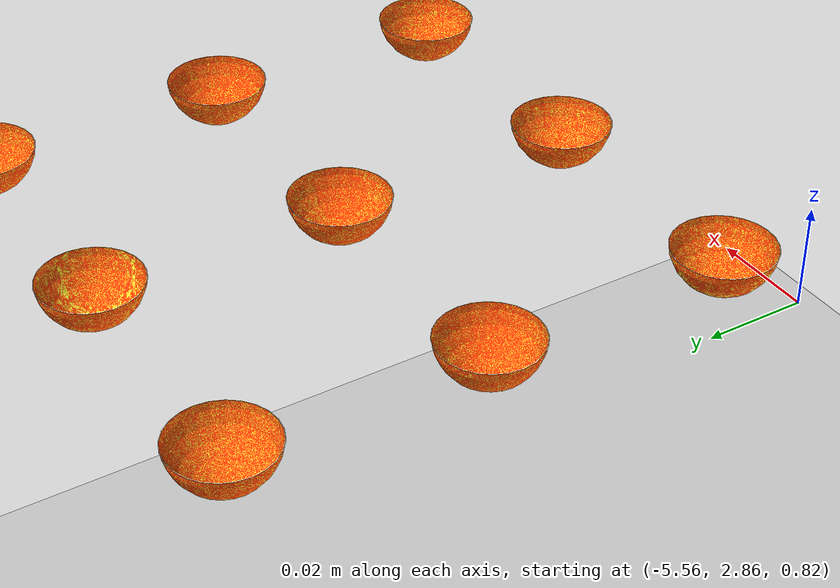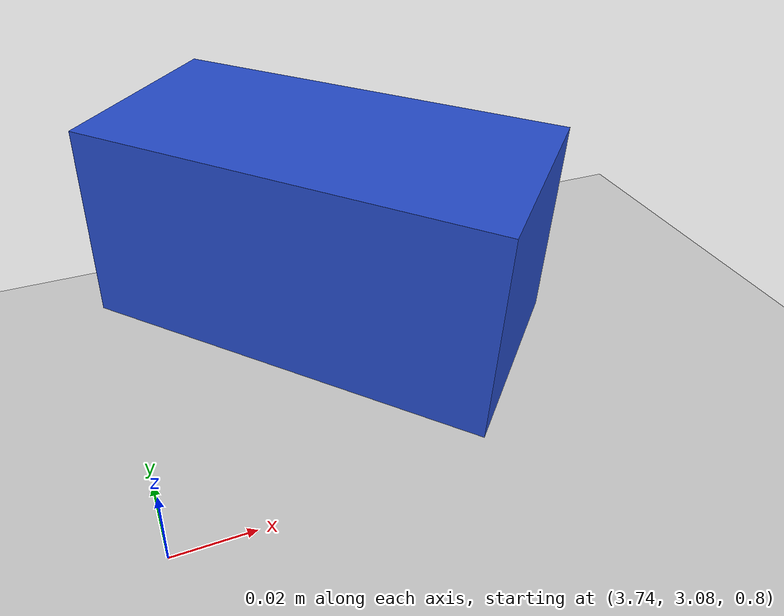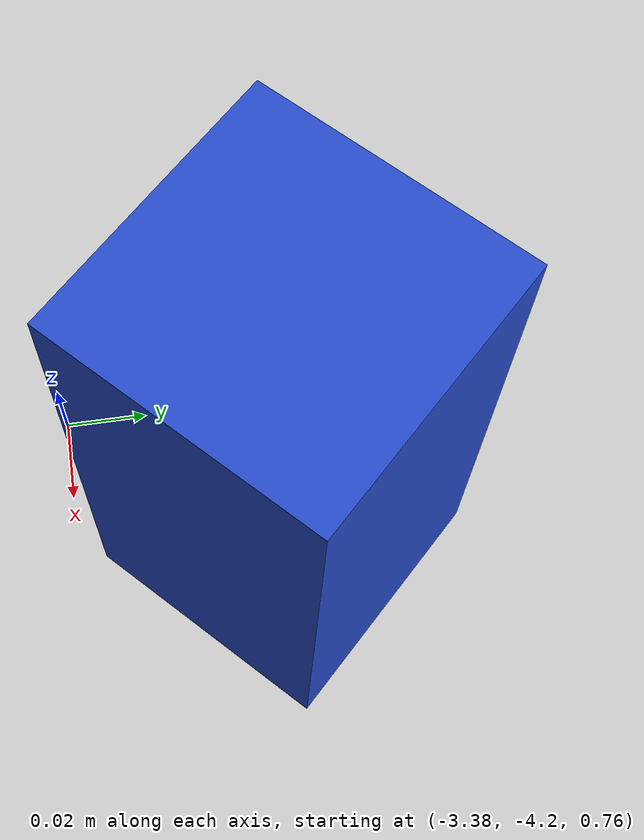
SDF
<sdf version="1.4">
 <world name="default">
  <include><uri>model://ground_plane</uri></include>
  <include><uri>model://sun</uri></include>
  <include><uri>model://demo_cube</uri><name>cube1</name><pose>3.8 3.15 0.83 -1.57 0 0.78</pose></include>
  <include><uri>model://demo_cube</uri><name>cube2</name><pose>-3.34 -4.15 0.83 0 0 0.78</pose></include>
  <include><uri>model://bowl</uri><pose>-5.5 2.92 0.83 0 0 0</pose><name>bowl1</name></include>
  <include><uri>model://bowl</uri><pose>-5.45 2.92 0.83 0 0 0</pose><name>bowl2</name></include>
  <include><uri>model://bowl</uri><pose>-5.55 2.92 0.83 0 0 0</pose><name>bowl3</name></include>
  <include><uri>model://bowl</uri><pose>-5.5 2.87 0.83 0 0 0</pose><name>bowl4</name></include>
  <include><uri>model://bowl</uri><pose>-5.5 2.97 0.83 0 0 0</pose><name>bowl5</name></include>
  <include><uri>model://bowl</uri><pose>-5.45 2.97 0.83 0 0 0</pose><name>bowl6</name></include>
  <include><uri>model://bowl</uri><pose>-5.45 2.87 0.83 0 0 0</pose><name>bowl7</name></include>
  <include><uri>model://bowl</uri><pose>-5.55 2.97 0.83 0 0 0</pose><name>bowl8</name></include>
  <include><uri>model://bowl</uri><pose>-5.55 2.87 0.83 0 0 0</pose><name>bowl9</name></include>
 </world>
</sdf>

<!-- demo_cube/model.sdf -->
<sdf version='1.4'>
  <model name="demo_cube">
      <static>0</static>
      <link name='link'>
        <inertial>
          <mass>0.25</mass>
          <inertia>
            <ixx>0.001</ixx>
            <ixy>0.000000</ixy>
            <ixz>0.000000</ixz>
            <iyy>0.001</iyy>
            <iyz>0.000000</iyz>
            <izz>0.001</izz>
          </inertia>
        </inertial>
        <collision name='collision'>
          <geometry>
            <box>
              <size>0.060 0.060 0.120</size>
            </box>
          </geometry>
          <surface>
            <friction>
              <ode>
                <mu>30.0</mu>
                <mu2>30.0</mu2>
              </ode>
            </friction>
            <contact>
              <ode>
                <kp>1000000.0</kp>
                <kd>100.0</kd>
                <max_vel>1.0</max_vel>
                <min_depth>0.002</min_depth>
              </ode>
            </contact>
          </surface>
        </collision>
        <visual name='visual'>
          <geometry>
            <box>
              <size>0.060 0.060 0.120</size>
            </box>
          </geometry>
          <material>
            <script>
              <uri>file://media/materials/scripts/gazebo.material</uri>
              <name>Gazebo/Blue</name>
            </script>
          </material>
        </visual>
        <velocity_decay>
          <linear>0.000000</linear>
          <angular>0.000000</angular>
        </velocity_decay>
        <self_collide>0</self_collide>
        <kinematic>0</kinematic>
        <gravity>1</gravity>
      </link>
  </model>
</sdf>

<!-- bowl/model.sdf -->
<sdf version="1.4">
  <model name="bowl">
    <link name="link">
      <collision name="collision">
        <pose>0 0 0 0 0 0</pose>
        <geometry>
          <mesh>
            <uri>model://bowl/meshes/bowl.dae</uri>
          </mesh>
        </geometry>
      </collision>
      <visual name="visual">
        <pose>0 0 0 0 0 0</pose>
        <geometry>
          <mesh>
            <uri>model://bowl/meshes/bowl.dae</uri>
          </mesh>
        </geometry>
      </visual>
    </link>
    <static>1</static>
  </model>
</sdf>
